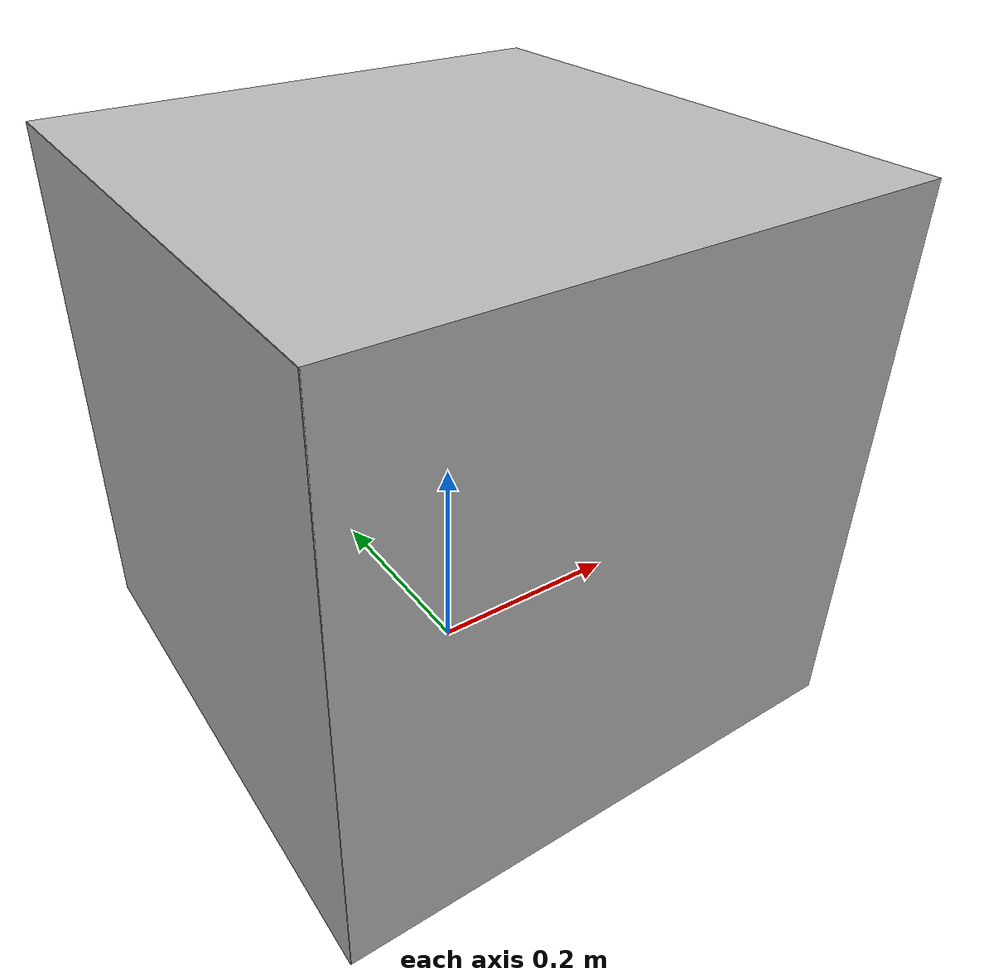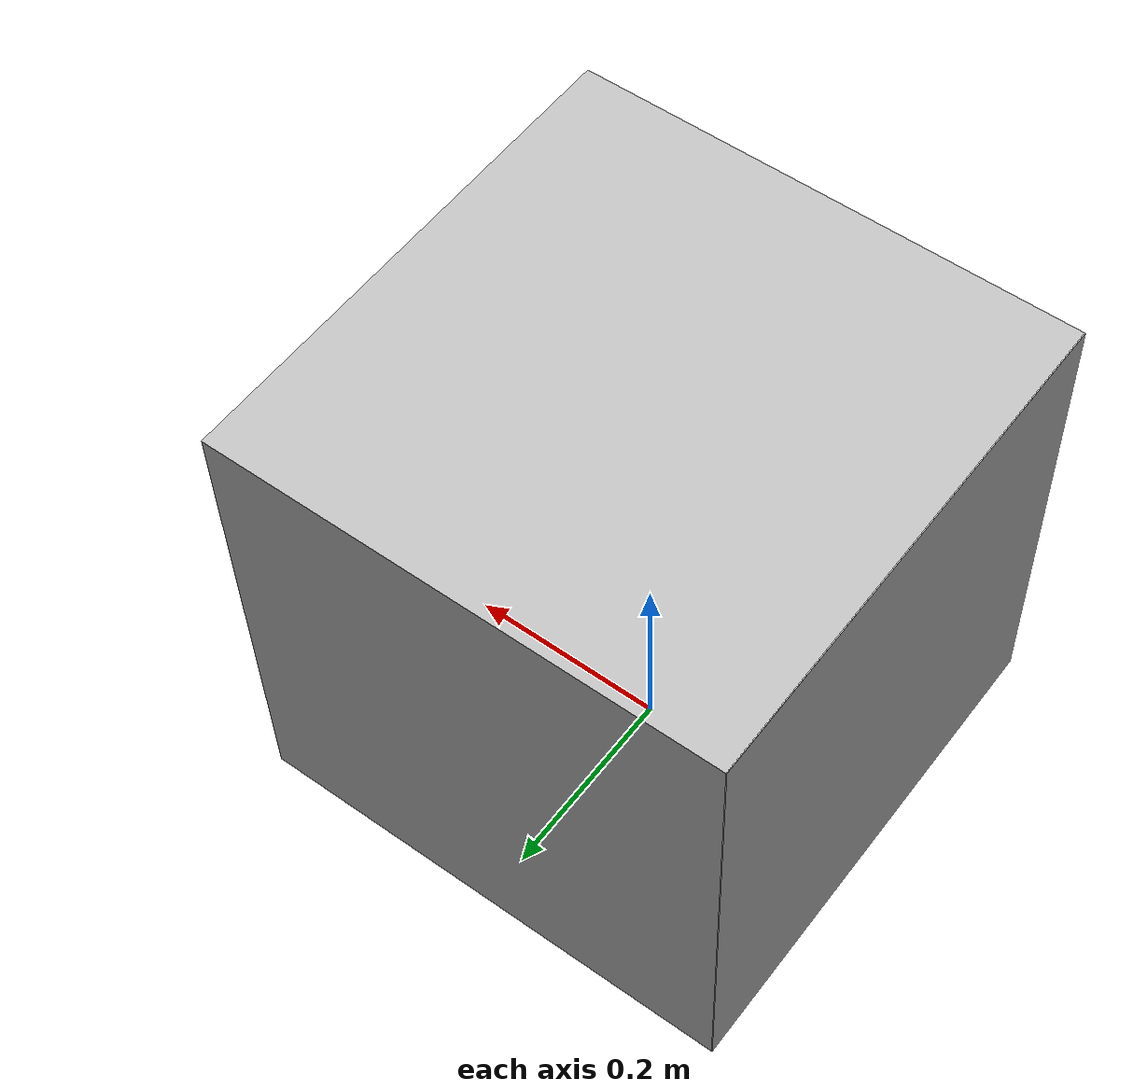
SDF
<?xml version="1.0" ?>
<sdf version="1.6">
  <model name="cube_marker">
    <static>true</static>
    <link name="cube_link">
      <pose>0 0 0.25 0 0 1.570796327</pose> <!-- 2m in front, rotated to face drone -->

      <collision name="collision">
        <geometry>
          <box>
            <size>0.5 0.5 0.5</size> <!-- 500mm cube -->
          </box>
        </geometry>
      </collision>

      <!-- 🖼 The FRONT face with the PNG -->
      <visual name="textured_face">
        <pose>0 0.25 0 0 0 0</pose>
        <geometry>
          <box>
            <size>0.5 0.001 0.5</size>
          </box>
        </geometry>
        <material>
          <script>
            <uri>model://cube_marker/materials/scripts</uri>
            <uri>model://cube_marker/materials/textures</uri>
            <name>Gazebo/marker</name>
          </script>
        </material>
      </visual>

      <!-- ⬛ The main black cube -->
      <visual name="black_cube">
        <geometry>
          <box>
            <size>0.5 0.5 0.5</size>
          </box>
        </geometry>
        <material>
          <script>
            <uri>model://cube_marker/materials/scripts</uri>
            <uri>model://cube_marker/materials/textures</uri>
            <name>Gazebo/carbon</name>
          </script>
        </material>
      </visual>
    </link>
  </model>
</sdf>
